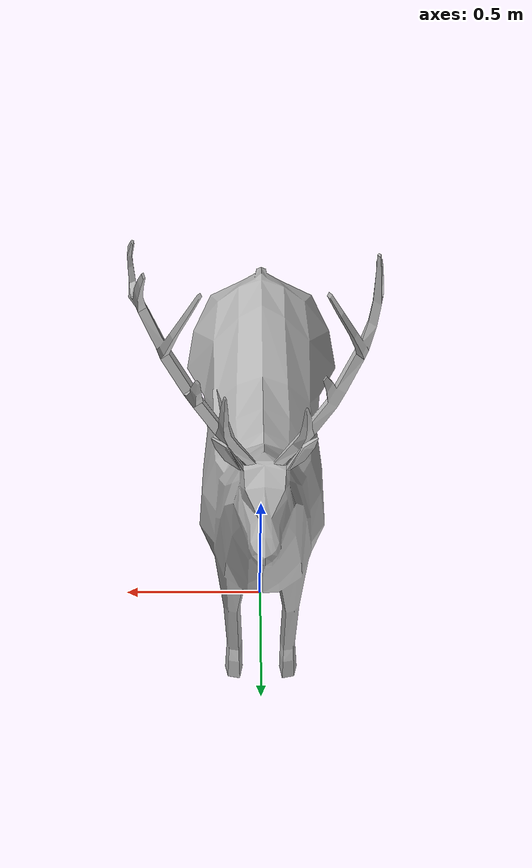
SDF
<?xml version="1.0" ?>
<sdf version="1.6">
  <model name="deer">
    <static>true</static>
    <link name="link">
      <!-- Thermal override visual for d">thermal camera -->
      <visual name="visual">
        <geometry>
          <mesh>
            <uri>model://deer/meshes/deer.obj</uri>
          </mesh>
        </geometry>
        <plugin filename="ignition-gazebo-thermal-system"
                name="ignition::gazebo::systems::Thermal">
          <temperature>313.15</temperature>
          <emissivity>0.95</emissivity>
        </plugin>
      </visual>

      <collision name="collision">
        <geometry>
          <mesh><uri>model://deer/meshes/deer.stl</uri></mesh>
        </geometry>
      </collision>
    </link>
  </model>
</sdf>
